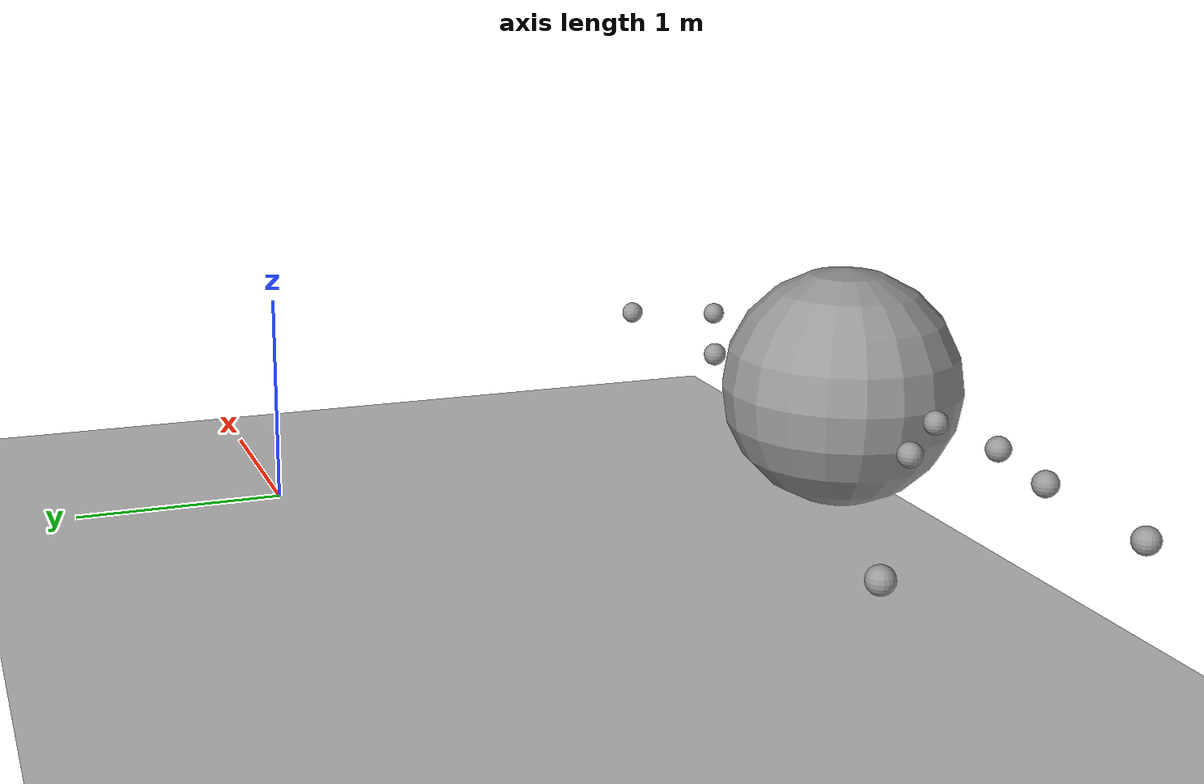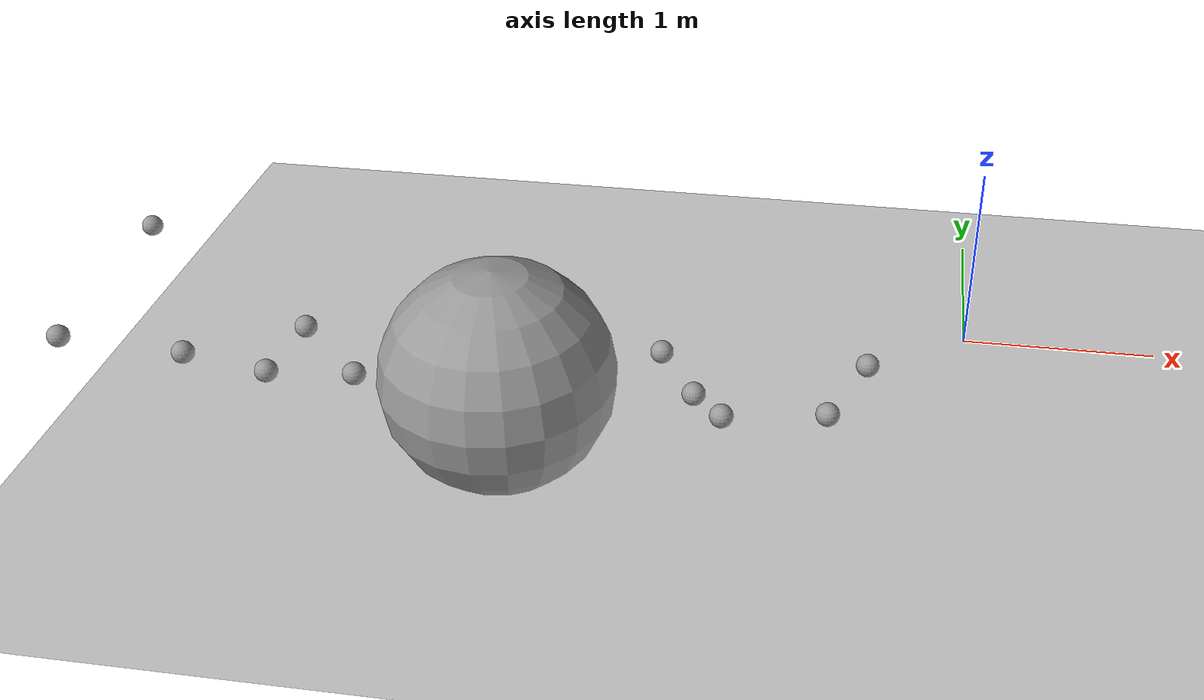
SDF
<sdf version="1.6">
 <world name="default">
  <model name="ground_plane">
   <static>1</static>
   <link name="link">
    <collision name="collision">
     <geometry><plane><normal>0 0 1</normal><size>100 100</size></plane></geometry>
     <surface><friction><ode><mu>100</mu><mu2>50</mu2></ode></friction></surface>
    </collision>
    <visual name="visual">
     <cast_shadows>0</cast_shadows>
     <geometry><plane><normal>0 0 1</normal><size>100 100</size></plane></geometry>
     <material>
      <script><uri>file://media/materials/scripts/gazebo.material</uri><name>Gazebo/Grey</name></script>
     </material>
    </visual>
   </link>
  </model>
  <light name="sun" type="directional">
   <pose>0 0 10 0 -0 0</pose>
   <diffuse>0.8 0.8 0.8 1</diffuse>
   <specular>0.1 0.1 0.1 1</specular>
   <attenuation>
    <range>1000</range>
    <constant>0.9</constant>
    <linear>0.01</linear>
    <quadratic>0.001</quadratic>
   </attenuation>
   <direction>-0.5 0.5 -1</direction>
  </light>
  <gravity>0 0 -9.8</gravity>
  <magnetic_field>6e-06 2.3e-05 -4.2e-05</magnetic_field>
  <atmosphere type="adiabatic"/>
  <physics name="default_physics" default="0" type="ode">
   <max_step_size>0.001</max_step_size>
   <real_time_factor>1</real_time_factor>
   <real_time_update_rate>1000</real_time_update_rate>
  </physics>
  <scene><ambient>0.4 0.4 0.4 1</ambient><background>0.7 0.7 0.7 1</background><shadows>1</shadows></scene>
  <spherical_coordinates>
   <surface_model>EARTH_WGS84</surface_model>
   <latitude_deg>0</latitude_deg>
   <longitude_deg>0</longitude_deg>
   <elevation>0</elevation>
   <heading_deg>0</heading_deg>
  </spherical_coordinates>
  <model name="unit_sphere">
   <pose>-2.02315 -1.98017 0.933177 2.9e-05 -0 0</pose>
   <link name="link">
    <inertial>
     <mass>1</mass>
     <inertia><ixx>0.1</ixx><ixy>0</ixy><ixz>0</ixz><iyy>0.1</iyy><iyz>0</iyz><izz>0.1</izz></inertia>
    </inertial>
    <collision name="collision"><geometry><sphere><radius>0.5</radius></sphere></geometry></collision>
    <visual name="visual">
     <geometry><sphere><radius>0.5</radius></sphere></geometry>
     <material>
      <script><name>Gazebo/Grey</name><uri>file://media/materials/scripts/gazebo.material</uri></script>
     </material>
    </visual>
   </link>
  </model>
  <model name="unit_sphere_clone">
   <pose>-2.94578 -1.74737 0.933174 2.9e-05 -0 0</pose>
   <link name="link">
    <inertial>
     <mass>1</mass>
     <inertia><ixx>0.1</ixx><ixy>0</ixy><ixz>0</ixz><iyy>0.1</iyy><iyz>0</iyz><izz>0.1</izz></inertia>
    </inertial>
    <collision name="collision"><geometry><sphere><radius>0.0489445</radius></sphere></geometry></collision>
    <visual name="visual">
     <geometry><sphere><radius>0.0489445</radius></sphere></geometry>
     <material>
      <script><name>Gazebo/Grey</name><uri>file://media/materials/scripts/gazebo.material</uri></script>
     </material>
    </visual>
   </link>
  </model>
  <model name="unit_sphere_clone_0">
   <pose>-2.61983 -2.0594 0.933176 2.6e-05 -0 0</pose>
   <link name="link">
    <inertial>
     <mass>1</mass>
     <inertia><ixx>0.1</ixx><ixy>0</ixy><ixz>0</ixz><iyy>0.1</iyy><iyz>0</iyz><izz>0.1</izz></inertia>
    </inertial>
    <collision name="collision"><geometry><sphere><radius>0.0489445</radius></sphere></geometry></collision>
    <visual name="visual">
     <geometry><sphere><radius>0.0489445</radius></sphere></geometry>
     <material>
      <script><name>Gazebo/Grey</name><uri>file://media/materials/scripts/gazebo.material</uri></script>
     </material>
    </visual>
   </link>
  </model>
  <model name="unit_sphere_clone_1">
   <pose>-1.37692 -1.70571 0.933173 2.4e-05 -0 0</pose>
   <link name="link">
    <inertial>
     <mass>1</mass>
     <inertia><ixx>0.1</ixx><ixy>0</ixy><ixz>0</ixz><iyy>0.1</iyy><iyz>0</iyz><izz>0.1</izz></inertia>
    </inertial>
    <collision name="collision"><geometry><sphere><radius>0.0489445</radius></sphere></geometry></collision>
    <visual name="visual">
     <geometry><sphere><radius>0.0489445</radius></sphere></geometry>
     <material>
      <script><name>Gazebo/Grey</name><uri>file://media/materials/scripts/gazebo.material</uri></script>
     </material>
    </visual>
   </link>
  </model>
  <model name="unit_sphere_clone_2">
   <pose>-3.39211 -2.01789 0.933174 2.2e-05 -0 0</pose>
   <link name="link">
    <inertial>
     <mass>1</mass>
     <inertia><ixx>0.1</ixx><ixy>0</ixy><ixz>0</ixz><iyy>0.1</iyy><iyz>0</iyz><izz>0.1</izz></inertia>
    </inertial>
    <collision name="collision"><geometry><sphere><radius>0.0489445</radius></sphere></geometry></collision>
    <visual name="visual">
     <geometry><sphere><radius>0.0489445</radius></sphere></geometry>
     <material>
      <script><name>Gazebo/Grey</name><uri>file://media/materials/scripts/gazebo.material</uri></script>
     </material>
    </visual>
   </link>
  </model>
  <model name="unit_sphere_clone_3">
   <pose>-1.82951 -2.2717 0.933177 2.1e-05 -0 0</pose>
   <link name="link">
    <inertial>
     <mass>1</mass>
     <inertia><ixx>0.1</ixx><ixy>0</ixy><ixz>0</ixz><iyy>0.1</iyy><iyz>0</iyz><izz>0.1</izz></inertia>
    </inertial>
    <collision name="collision"><geometry><sphere><radius>0.0489445</radius></sphere></geometry></collision>
    <visual name="visual">
     <geometry><sphere><radius>0.0489445</radius></sphere></geometry>
     <material>
      <script><name>Gazebo/Grey</name><uri>file://media/materials/scripts/gazebo.material</uri></script>
     </material>
    </visual>
   </link>
  </model>
  <model name="unit_sphere_clone_4">
   <pose>-1.06928 -2.12029 0.933181 2.3e-05 -0 0</pose>
   <link name="link">
    <inertial>
     <mass>1</mass>
     <inertia><ixx>0.1</ixx><ixy>0</ixy><ixz>0</ixz><iyy>0.1</iyy><iyz>0</iyz><izz>0.1</izz></inertia>
    </inertial>
    <collision name="collision"><geometry><sphere><radius>0.0489445</radius></sphere></geometry></collision>
    <visual name="visual">
     <geometry><sphere><radius>0.0489445</radius></sphere></geometry>
     <material>
      <script><name>Gazebo/Grey</name><uri>file://media/materials/scripts/gazebo.material</uri></script>
     </material>
    </visual>
   </link>
  </model>
  <model name="unit_sphere_clone_5">
   <pose>-0.507113 -1.67571 0.93318 2.4e-05 -0 0</pose>
   <link name="link">
    <inertial>
     <mass>1</mass>
     <inertia><ixx>0.1</ixx><ixy>0</ixy><ixz>0</ixz><iyy>0.1</iyy><iyz>0</iyz><izz>0.1</izz></inertia>
    </inertial>
    <collision name="collision"><geometry><sphere><radius>0.0489445</radius></sphere></geometry></collision>
    <visual name="visual">
     <geometry><sphere><radius>0.0489445</radius></sphere></geometry>
     <material>
      <script><name>Gazebo/Grey</name><uri>file://media/materials/scripts/gazebo.material</uri></script>
     </material>
    </visual>
   </link>
  </model>
  <model name="unit_sphere_clone_6">
   <pose>-3.97819 -1.98278 0.933173 2.9e-05 -0 0</pose>
   <link name="link">
    <inertial>
     <mass>1</mass>
     <inertia><ixx>0.1</ixx><ixy>0</ixy><ixz>0</ixz><iyy>0.1</iyy><iyz>0</iyz><izz>0.1</izz></inertia>
    </inertial>
    <collision name="collision"><geometry><sphere><radius>0.0489445</radius></sphere></geometry></collision>
    <visual name="visual">
     <geometry><sphere><radius>0.0489445</radius></sphere></geometry>
     <material>
      <script><name>Gazebo/Grey</name><uri>file://media/materials/scripts/gazebo.material</uri></script>
     </material>
    </visual>
   </link>
  </model>
  <model name="unit_sphere_clone_7">
   <pose>-4.00761 -1.00263 0.93317 2.9e-05 -0 0</pose>
   <link name="link">
    <inertial>
     <mass>1</mass>
     <inertia><ixx>0.1</ixx><ixy>0</ixy><ixz>0</ixz><iyy>0.1</iyy><iyz>0</iyz><izz>0.1</izz></inertia>
    </inertial>
    <collision name="collision"><geometry><sphere><radius>0.0489445</radius></sphere></geometry></collision>
    <visual name="visual">
     <geometry><sphere><radius>0.0489445</radius></sphere></geometry>
     <material>
      <script><name>Gazebo/Grey</name><uri>file://media/materials/scripts/gazebo.material</uri></script>
     </material>
    </visual>
   </link>
  </model>
  <model name="unit_sphere_clone_8">
   <pose>-2.99002 -2.09527 0.933176 2.5e-05 -0 0</pose>
   <link name="link">
    <inertial>
     <mass>1</mass>
     <inertia><ixx>0.1</ixx><ixy>0</ixy><ixz>0</ixz><iyy>0.1</iyy><iyz>0</iyz><izz>0.1</izz></inertia>
    </inertial>
    <collision name="collision"><geometry><sphere><radius>0.0489445</radius></sphere></geometry></collision>
    <visual name="visual">
     <geometry><sphere><radius>0.0489445</radius></sphere></geometry>
     <material>
      <script><name>Gazebo/Grey</name><uri>file://media/materials/scripts/gazebo.material</uri></script>
     </material>
    </visual>
   </link>
  </model>
  <model name="unit_sphere_clone_9">
   <pose>-2.27974 -2.03802 0.933172 2.1e-05 -0 0</pose>
   <link name="link">
    <inertial>
     <mass>1</mass>
     <inertia><ixx>0.1</ixx><ixy>0</ixy><ixz>0</ixz><iyy>0.1</iyy><iyz>0</iyz><izz>0.1</izz></inertia>
    </inertial>
    <collision name="collision"><geometry><sphere><radius>0.0489445</radius></sphere></geometry></collision>
    <visual name="visual">
     <geometry><sphere><radius>0.0489445</radius></sphere></geometry>
     <material>
      <script><name>Gazebo/Grey</name><uri>file://media/materials/scripts/gazebo.material</uri></script>
     </material>
    </visual>
   </link>
  </model>
  <model name="unit_sphere_clone_10">
   <pose>-1.20017 -1.98753 0.933177 2.1e-05 -0 0</pose>
   <link name="link">
    <inertial>
     <mass>1</mass>
     <inertia><ixx>0.1</ixx><ixy>0</ixy><ixz>0</ixz><iyy>0.1</iyy><iyz>0</iyz><izz>0.1</izz></inertia>
    </inertial>
    <collision name="collision"><geometry><sphere><radius>0.0489445</radius></sphere></geometry></collision>
    <visual name="visual">
     <geometry><sphere><radius>0.0489445</radius></sphere></geometry>
     <material>
      <script><name>Gazebo/Grey</name><uri>file://media/materials/scripts/gazebo.material</uri></script>
     </material>
    </visual>
   </link>
  </model>
  <model name="unit_sphere_clone_11">
   <pose>-0.649371 -2.04574 0.933182 1.8e-05 -0 0</pose>
   <link name="link">
    <inertial>
     <mass>1</mass>
     <inertia><ixx>0.1</ixx><ixy>0</ixy><ixz>0</ixz><iyy>0.1</iyy><iyz>0</iyz><izz>0.1</izz></inertia>
    </inertial>
    <collision name="collision"><geometry><sphere><radius>0.0489445</radius></sphere></geometry></collision>
    <visual name="visual">
     <geometry><sphere><radius>0.0489445</radius></sphere></geometry>
     <material>
      <script><name>Gazebo/Grey</name><uri>file://media/materials/scripts/gazebo.material</uri></script>
     </material>
    </visual>
   </link>
  </model>
 </world>
</sdf>
